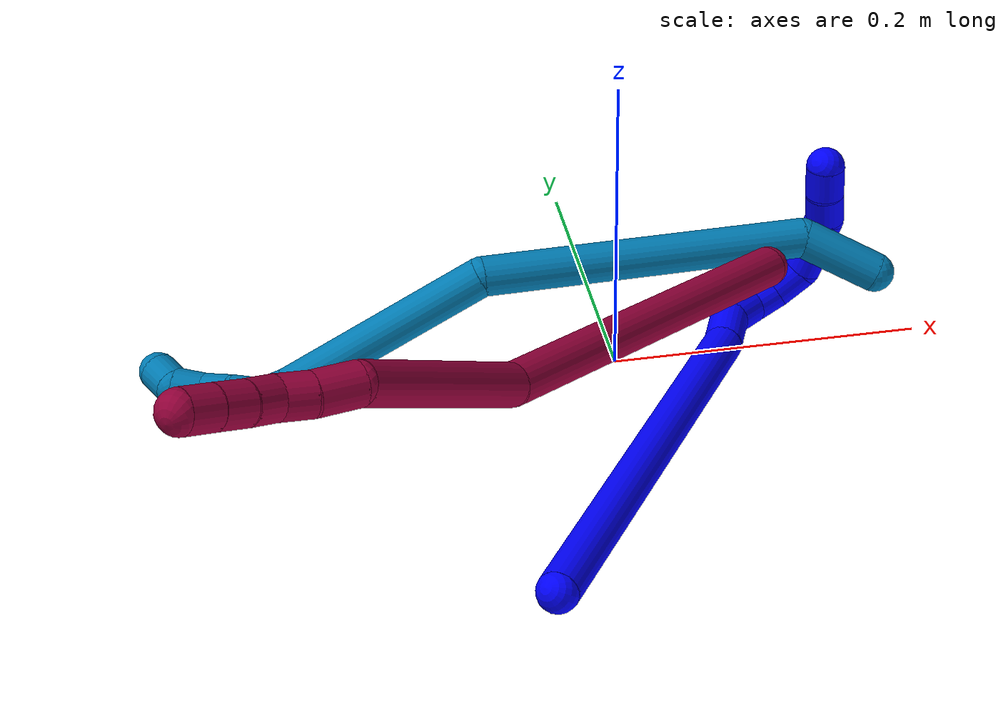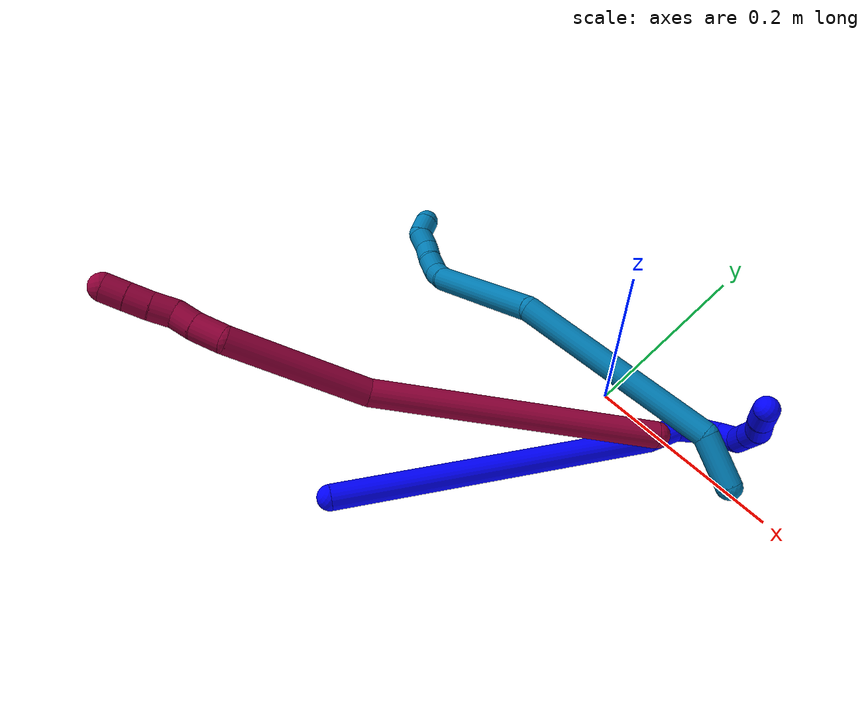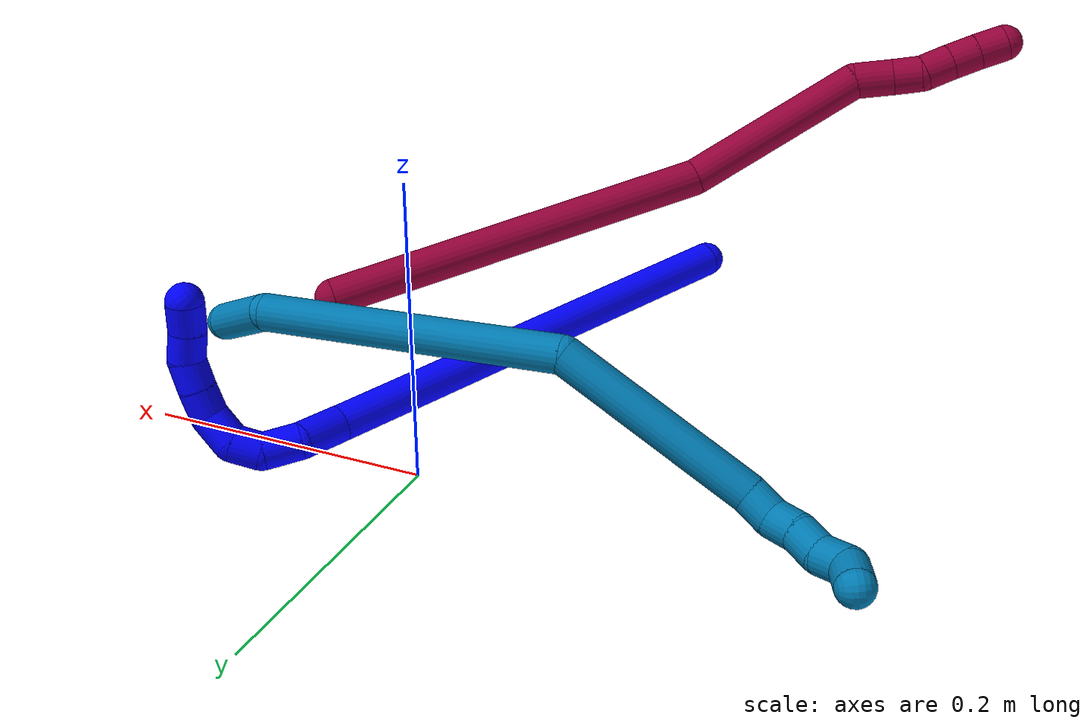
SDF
<sdf version="1.7">
 <world name="default">
  <model name="photoneo_s_sensor">
   <static>1</static>
   <pose>0 0 2 1.57079 1.57079 3.14159</pose>
   <link name="link">
    <inertial><mass>0.1</mass></inertial>
    <sensor name="sensor" type="depth">
     <update_rate>30</update_rate>
     <camera>
      <horizontal_fov>1.22</horizontal_fov>
      <image><width>1920</width><height>1200</height><format>B8G8R8</format></image>
      <clip><near>0.1</near><far>4</far></clip>
      <depth_camera><output>points</output></depth_camera>
     </camera>
     <plugin name="camera_plugin" filename="libgazebo_ros_depth_camera.so">
      <baseline>0.2</baseline>
      <alwaysOn>1</alwaysOn>
      <updateRate>0.0</updateRate>
      <cameraName>camera_ir</cameraName>
      <imageTopicName>/camera/color/image_raw</imageTopicName>
      <cameraInfoTopicName>/camera/color/camera_info</cameraInfoTopicName>
      <depthImageTopicName>/camera/depth/image_raw</depthImageTopicName>
      <depthImageCameraInfoTopicName>/camera/depth/camera_info</depthImageCameraInfoTopicName>
      <pointCloudTopicName>/camera/depth/points</pointCloudTopicName>
      <frameName>fr_optical</frameName>
      <pointCloudCutoff>0.1</pointCloudCutoff>
      <pointCloudCutoffMax>2.0</pointCloudCutoffMax>
      <distortionK1>0</distortionK1>
      <distortionK2>0</distortionK2>
      <distortionK3>0</distortionK3>
      <distortionT1>0</distortionT1>
      <distortionT2>0</distortionT2>
      <CxPrime>0</CxPrime>
      <Cx>0</Cx>
      <Cy>0</Cy>
      <focalLength>0</focalLength>
      <hackBaseline>0</hackBaseline>
     </plugin>
    </sensor>
   </link>
  </model>
  <model name="bin">
   <static>1</static>
   <link name="bottom">
    <collision name="collision-bottom">
     <pose>0 0 -0.01 0 -0 0</pose>
     <geometry><box><size>0.8 0.6 0.02</size></box></geometry>
     <surface>
      <friction><ode><mu>100</mu><mu2>100</mu2></ode></friction>
      <contact><collide_bitmask>65535</collide_bitmask></contact>
     </surface>
    </collision>
   </link>
   <link name="west_wall">
    <collision name="collision-west_wall">
     <pose>-0.41 0 0.1 0 -0 0</pose>
     <geometry><box><size>0.02 0.6 0.2</size></box></geometry>
     <surface>
      <friction><ode><mu>100</mu><mu2>100</mu2></ode></friction>
      <contact><collide_bitmask>65535</collide_bitmask></contact>
     </surface>
    </collision>
   </link>
   <link name="east_wall">
    <collision name="collision-east_wall">
     <pose>0.41 0 0.1 0 -0 0</pose>
     <geometry><box><size>0.02 0.6 0.2</size></box></geometry>
     <surface>
      <friction><ode><mu>100</mu><mu2>100</mu2></ode></friction>
      <contact><collide_bitmask>65535</collide_bitmask></contact>
     </surface>
    </collision>
   </link>
   <link name="south_wall">
    <collision name="collision-south_wall">
     <pose>0 -0.31 0.1 0 -0 0</pose>
     <geometry><box><size>0.8 0.02 0.2</size></box></geometry>
     <surface>
      <friction><ode><mu>100</mu><mu2>100</mu2></ode></friction>
      <contact><collide_bitmask>65535</collide_bitmask></contact>
     </surface>
    </collision>
   </link>
   <link name="north_wall">
    <collision name="collision-north_wall">
     <pose>0 0.31 0.1 0 -0 0</pose>
     <geometry><box><size>0.8 0.02 0.2</size></box></geometry>
     <surface>
      <friction><ode><mu>100</mu><mu2>100</mu2></ode></friction>
      <contact><collide_bitmask>65535</collide_bitmask></contact>
     </surface>
    </collision>
   </link>
  </model>
  <model name="1">
   <static>0</static>
   <link name="1">
    <collision name="collision-cylinder-e_1_1_4">
     <pose>0.070733 0.076164 -0.121175 -2.58045 0.459004 -1.36244</pose>
     <geometry><cylinder><radius>0.0125</radius><length>0.319297</length></cylinder></geometry>
     <surface>
      <friction><ode><mu>1.16</mu><mu2>1.16</mu2><slip1>0</slip1><slip2>0</slip2></ode></friction>
      <contact><ode><kp>1e+06</kp><kd>1</kd><max_vel>0</max_vel><min_depth>0.001</min_depth></ode></contact>
     </surface>
    </collision>
    <visual name="visual-cylinder-e_1_1_4">
     <pose>0.070733 0.076164 -0.121175 -2.58045 0.459004 -1.36244</pose>
     <geometry><cylinder><radius>0.0125</radius><length>0.319297</length></cylinder></geometry>
     <material><ambient>0 0 1 1</ambient></material>
    </visual>
    <collision name="collision-cylinder-e_2_4_5">
     <pose>0.148908 0.162032 -0.252272 -2.36735 0.492259 -1.1045</pose>
     <geometry><cylinder><radius>0.0125</radius><length>0.031494</length></cylinder></geometry>
     <surface>
      <friction><ode><mu>1.16</mu><mu2>1.16</mu2><slip1>0</slip1><slip2>0</slip2></ode></friction>
      <contact><ode><kp>1e+06</kp><kd>1</kd><max_vel>0</max_vel><min_depth>0.001</min_depth></ode></contact>
     </surface>
    </collision>
    <visual name="visual-cylinder-e_2_4_5">
     <pose>0.148908 0.162032 -0.252272 -2.36735 0.492259 -1.1045</pose>
     <geometry><cylinder><radius>0.0125</radius><length>0.031494</length></cylinder></geometry>
     <material><ambient>0 0 1 1</ambient></material>
    </visual>
    <collision name="collision-cylinder-e_3_5_6">
     <pose>0.162961 0.174394 -0.272682 -2.89323 0.548386 -2.30627</pose>
     <geometry><cylinder><radius>0.0125</radius><length>0.02536</length></cylinder></geometry>
     <surface>
      <friction><ode><mu>1.16</mu><mu2>1.16</mu2><slip1>0</slip1><slip2>0</slip2></ode></friction>
      <contact><ode><kp>1e+06</kp><kd>1</kd><max_vel>0</max_vel><min_depth>0.001</min_depth></ode></contact>
     </surface>
    </collision>
    <visual name="visual-cylinder-e_3_5_6">
     <pose>0.162961 0.174394 -0.272682 -2.89323 0.548386 -2.30627</pose>
     <geometry><cylinder><radius>0.0125</radius><length>0.02536</length></cylinder></geometry>
     <material><ambient>0 0 1 1</ambient></material>
    </visual>
    <collision name="collision-cylinder-e_4_6_7">
     <pose>0.1779 0.17552 -0.288527 2.86272 0.981267 2.62775</pose>
     <geometry><cylinder><radius>0.0125</radius><length>0.020042</length></cylinder></geometry>
     <surface>
      <friction><ode><mu>1.16</mu><mu2>1.16</mu2><slip1>0</slip1><slip2>0</slip2></ode></friction>
      <contact><ode><kp>1e+06</kp><kd>1</kd><max_vel>0</max_vel><min_depth>0.001</min_depth></ode></contact>
     </surface>
    </collision>
    <visual name="visual-cylinder-e_4_6_7">
     <pose>0.1779 0.17552 -0.288527 2.86272 0.981267 2.62775</pose>
     <geometry><cylinder><radius>0.0125</radius><length>0.020042</length></cylinder></geometry>
     <material><ambient>0 0 1 1</ambient></material>
    </visual>
    <collision name="collision-cylinder-e_5_7_8">
     <pose>0.196778 0.169395 -0.294046 1.60625 1.16 1.19274</pose>
     <geometry><cylinder><radius>0.0125</radius><length>0.023011</length></cylinder></geometry>
     <surface>
      <friction><ode><mu>1.16</mu><mu2>1.16</mu2><slip1>0</slip1><slip2>0</slip2></ode></friction>
      <contact><ode><kp>1e+06</kp><kd>1</kd><max_vel>0</max_vel><min_depth>0.001</min_depth></ode></contact>
     </surface>
    </collision>
    <visual name="visual-cylinder-e_5_7_8">
     <pose>0.196778 0.169395 -0.294046 1.60625 1.16 1.19274</pose>
     <geometry><cylinder><radius>0.0125</radius><length>0.023011</length></cylinder></geometry>
     <material><ambient>0 0 1 1</ambient></material>
    </visual>
    <collision name="collision-cylinder-e_6_8_9">
     <pose>0.216645 0.163697 -0.290394 0.282203 1.16791 0.187189</pose>
     <geometry><cylinder><radius>0.0125</radius><length>0.020259</length></cylinder></geometry>
     <surface>
      <friction><ode><mu>1.16</mu><mu2>1.16</mu2><slip1>0</slip1><slip2>0</slip2></ode></friction>
      <contact><ode><kp>1e+06</kp><kd>1</kd><max_vel>0</max_vel><min_depth>0.001</min_depth></ode></contact>
     </surface>
    </collision>
    <visual name="visual-cylinder-e_6_8_9">
     <pose>0.216645 0.163697 -0.290394 0.282203 1.16791 0.187189</pose>
     <geometry><cylinder><radius>0.0125</radius><length>0.020259</length></cylinder></geometry>
     <material><ambient>0 0 1 1</ambient></material>
    </visual>
    <collision name="collision-cylinder-e_7_9_10">
     <pose>0.234927 0.161015 -0.282424 0.362489 1.11047 0.226387</pose>
     <geometry><cylinder><radius>0.0125</radius><length>0.02001</length></cylinder></geometry>
     <surface>
      <friction><ode><mu>1.16</mu><mu2>1.16</mu2><slip1>0</slip1><slip2>0</slip2></ode></friction>
      <contact><ode><kp>1e+06</kp><kd>1</kd><max_vel>0</max_vel><min_depth>0.001</min_depth></ode></contact>
     </surface>
    </collision>
    <visual name="visual-cylinder-e_7_9_10">
     <pose>0.234927 0.161015 -0.282424 0.362489 1.11047 0.226387</pose>
     <geometry><cylinder><radius>0.0125</radius><length>0.02001</length></cylinder></geometry>
     <material><ambient>0 0 1 1</ambient></material>
    </visual>
    <collision name="collision-cylinder-e_8_10_11">
     <pose>0.250617 0.159558 -0.27075 -0.015859 0.729801 -0.006058</pose>
     <geometry><cylinder><radius>0.0125</radius><length>0.020177</length></cylinder></geometry>
     <surface>
      <friction><ode><mu>1.16</mu><mu2>1.16</mu2><slip1>0</slip1><slip2>0</slip2></ode></friction>
      <contact><ode><kp>1e+06</kp><kd>1</kd><max_vel>0</max_vel><min_depth>0.001</min_depth></ode></contact>
     </surface>
    </collision>
    <visual name="visual-cylinder-e_8_10_11">
     <pose>0.250617 0.159558 -0.27075 -0.015859 0.729801 -0.006058</pose>
     <geometry><cylinder><radius>0.0125</radius><length>0.020177</length></cylinder></geometry>
     <material><ambient>0 0 1 1</ambient></material>
    </visual>
    <collision name="collision-cylinder-e_9_11_2">
     <pose>0.264999 0.160468 -0.256576 -0.118261 0.851722 -0.053695</pose>
     <geometry><cylinder><radius>0.0125</radius><length>0.020351</length></cylinder></geometry>
     <surface>
      <friction><ode><mu>1.16</mu><mu2>1.16</mu2><slip1>0</slip1><slip2>0</slip2></ode></friction>
      <contact><ode><kp>1e+06</kp><kd>1</kd><max_vel>0</max_vel><min_depth>0.001</min_depth></ode></contact>
     </surface>
    </collision>
    <visual name="visual-cylinder-e_9_11_2">
     <pose>0.264999 0.160468 -0.256576 -0.118261 0.851722 -0.053695</pose>
     <geometry><cylinder><radius>0.0125</radius><length>0.020351</length></cylinder></geometry>
     <material><ambient>0 0 1 1</ambient></material>
    </visual>
    <collision name="collision-sphere-2">
     <pose>0.272655 0.161259 -0.249921 0 -0 0</pose>
     <geometry><sphere><radius>0.0125</radius></sphere></geometry>
     <surface>
      <friction><ode><mu>1.16</mu><mu2>1.16</mu2><slip1>0</slip1><slip2>0</slip2></ode></friction>
      <contact><ode><kp>1e+06</kp><kd>1</kd><max_vel>0</max_vel><min_depth>0.001</min_depth></ode></contact>
     </surface>
    </collision>
    <visual name="visual-sphere-2">
     <pose>0.272655 0.161259 -0.249921 0 -0 0</pose>
     <geometry><sphere><radius>0.0125</radius></sphere></geometry>
     <material><ambient>0 0 1 1</ambient></material>
    </visual>
    <collision name="collision-sphere-11">
     <pose>0.257343 0.159678 -0.263232 0 -0 0</pose>
     <geometry><sphere><radius>0.0125</radius></sphere></geometry>
     <surface>
      <friction><ode><mu>1.16</mu><mu2>1.16</mu2><slip1>0</slip1><slip2>0</slip2></ode></friction>
      <contact><ode><kp>1e+06</kp><kd>1</kd><max_vel>0</max_vel><min_depth>0.001</min_depth></ode></contact>
     </surface>
    </collision>
    <visual name="visual-sphere-11">
     <pose>0.257343 0.159678 -0.263232 0 -0 0</pose>
     <geometry><sphere><radius>0.0125</radius></sphere></geometry>
     <material><ambient>0 0 1 1</ambient></material>
    </visual>
    <collision name="collision-sphere-10">
     <pose>0.243891 0.159439 -0.278268 0 -0 0</pose>
     <geometry><sphere><radius>0.0125</radius></sphere></geometry>
     <surface>
      <friction><ode><mu>1.16</mu><mu2>1.16</mu2><slip1>0</slip1><slip2>0</slip2></ode></friction>
      <contact><ode><kp>1e+06</kp><kd>1</kd><max_vel>0</max_vel><min_depth>0.001</min_depth></ode></contact>
     </surface>
    </collision>
    <visual name="visual-sphere-10">
     <pose>0.243891 0.159439 -0.278268 0 -0 0</pose>
     <geometry><sphere><radius>0.0125</radius></sphere></geometry>
     <material><ambient>0 0 1 1</ambient></material>
    </visual>
    <collision name="collision-sphere-9">
     <pose>0.225963 0.162591 -0.28658 0 -0 0</pose>
     <geometry><sphere><radius>0.0125</radius></sphere></geometry>
     <surface>
      <friction><ode><mu>1.16</mu><mu2>1.16</mu2><slip1>0</slip1><slip2>0</slip2></ode></friction>
      <contact><ode><kp>1e+06</kp><kd>1</kd><max_vel>0</max_vel><min_depth>0.001</min_depth></ode></contact>
     </surface>
    </collision>
    <visual name="visual-sphere-9">
     <pose>0.225963 0.162591 -0.28658 0 -0 0</pose>
     <geometry><sphere><radius>0.0125</radius></sphere></geometry>
     <material><ambient>0 0 1 1</ambient></material>
    </visual>
    <collision name="collision-sphere-4">
     <pose>0.141466 0.152329 -0.24235 0 -0 0</pose>
     <geometry><sphere><radius>0.0125</radius></sphere></geometry>
     <surface>
      <friction><ode><mu>1.16</mu><mu2>1.16</mu2><slip1>0</slip1><slip2>0</slip2></ode></friction>
      <contact><ode><kp>1e+06</kp><kd>1</kd><max_vel>0</max_vel><min_depth>0.001</min_depth></ode></contact>
     </surface>
    </collision>
    <visual name="visual-sphere-4">
     <pose>0.141466 0.152329 -0.24235 0 -0 0</pose>
     <geometry><sphere><radius>0.0125</radius></sphere></geometry>
     <material><ambient>0 0 1 1</ambient></material>
    </visual>
    <collision name="collision-sphere-1">
     <geometry><sphere><radius>0.0125</radius></sphere></geometry>
     <surface>
      <friction><ode><mu>1.16</mu><mu2>1.16</mu2><slip1>0</slip1><slip2>0</slip2></ode></friction>
      <contact><ode><kp>1e+06</kp><kd>1</kd><max_vel>0</max_vel><min_depth>0.001</min_depth></ode></contact>
     </surface>
    </collision>
    <visual name="visual-sphere-1">
     <geometry><sphere><radius>0.0125</radius></sphere></geometry>
     <material><ambient>0 0 1 1</ambient></material>
    </visual>
    <collision name="collision-sphere-8">
     <pose>0.207326 0.164803 -0.294208 0 -0 0</pose>
     <geometry><sphere><radius>0.0125</radius></sphere></geometry>
     <surface>
      <friction><ode><mu>1.16</mu><mu2>1.16</mu2><slip1>0</slip1><slip2>0</slip2></ode></friction>
      <contact><ode><kp>1e+06</kp><kd>1</kd><max_vel>0</max_vel><min_depth>0.001</min_depth></ode></contact>
     </surface>
    </collision>
    <visual name="visual-sphere-8">
     <pose>0.207326 0.164803 -0.294208 0 -0 0</pose>
     <geometry><sphere><radius>0.0125</radius></sphere></geometry>
     <material><ambient>0 0 1 1</ambient></material>
    </visual>
    <collision name="collision-sphere-5">
     <pose>0.156351 0.171734 -0.262193 0 -0 0</pose>
     <geometry><sphere><radius>0.0125</radius></sphere></geometry>
     <surface>
      <friction><ode><mu>1.16</mu><mu2>1.16</mu2><slip1>0</slip1><slip2>0</slip2></ode></friction>
      <contact><ode><kp>1e+06</kp><kd>1</kd><max_vel>0</max_vel><min_depth>0.001</min_depth></ode></contact>
     </surface>
    </collision>
    <visual name="visual-sphere-5">
     <pose>0.156351 0.171734 -0.262193 0 -0 0</pose>
     <geometry><sphere><radius>0.0125</radius></sphere></geometry>
     <material><ambient>0 0 1 1</ambient></material>
    </visual>
    <collision name="collision-sphere-6">
     <pose>0.169571 0.177054 -0.283171 0 -0 0</pose>
     <geometry><sphere><radius>0.0125</radius></sphere></geometry>
     <surface>
      <friction><ode><mu>1.16</mu><mu2>1.16</mu2><slip1>0</slip1><slip2>0</slip2></ode></friction>
      <contact><ode><kp>1e+06</kp><kd>1</kd><max_vel>0</max_vel><min_depth>0.001</min_depth></ode></contact>
     </surface>
    </collision>
    <visual name="visual-sphere-6">
     <pose>0.169571 0.177054 -0.283171 0 -0 0</pose>
     <geometry><sphere><radius>0.0125</radius></sphere></geometry>
     <material><ambient>0 0 1 1</ambient></material>
    </visual>
    <collision name="collision-sphere-7">
     <pose>0.18623 0.173987 -0.293883 0 -0 0</pose>
     <geometry><sphere><radius>0.0125</radius></sphere></geometry>
     <surface>
      <friction><ode><mu>1.16</mu><mu2>1.16</mu2><slip1>0</slip1><slip2>0</slip2></ode></friction>
      <contact><ode><kp>1e+06</kp><kd>1</kd><max_vel>0</max_vel><min_depth>0.001</min_depth></ode></contact>
     </surface>
    </collision>
    <visual name="visual-sphere-7">
     <pose>0.18623 0.173987 -0.293883 0 -0 0</pose>
     <geometry><sphere><radius>0.0125</radius></sphere></geometry>
     <material><ambient>0 0 1 1</ambient></material>
    </visual>
    <inertial>
     <pose>0.11808 0.108567 -0.176637 0 -0 0</pose>
     <mass>0.5</mass>
     <inertia>
      <ixx>-0.001864</ixx>
      <ixy>0</ixy>
      <ixz>0</ixz>
      <iyy>-0.002219</iyy>
      <iyz>0</iyz>
      <izz>-0.002539</izz>
     </inertia>
    </inertial>
   </link>
   <pose>-0.092999 -0.288503 0.055786 0.087195 -0.863797 0.461577</pose>
  </model>
  <model name="8">
   <static>0</static>
   <link name="8">
    <collision name="collision-cylinder-e_1_1_4">
     <pose>-0.024144 -0.029455 0.12606 0.229543 -0.184385 -0.021315</pose>
     <geometry><cylinder><radius>0.0125</radius><length>0.263376</length></cylinder></geometry>
     <surface>
      <friction><ode><mu>1.16</mu><mu2>1.16</mu2><slip1>0</slip1><slip2>0</slip2></ode></friction>
      <contact><ode><kp>1e+06</kp><kd>1</kd><max_vel>0</max_vel><min_depth>0.001</min_depth></ode></contact>
     </surface>
    </collision>
    <visual name="visual-cylinder-e_1_1_4">
     <pose>-0.024144 -0.029455 0.12606 0.229543 -0.184385 -0.021315</pose>
     <geometry><cylinder><radius>0.0125</radius><length>0.263376</length></cylinder></geometry>
     <material><ambient>0.584314 0 0.227451 1</ambient></material>
    </visual>
    <collision name="collision-cylinder-e_2_4_5">
     <pose>-0.077513 -0.075336 0.307431 0.288673 -0.468846 -0.069394</pose>
     <geometry><cylinder><radius>0.0125</radius><length>0.129355</length></cylinder></geometry>
     <surface>
      <friction><ode><mu>1.16</mu><mu2>1.16</mu2><slip1>0</slip1><slip2>0</slip2></ode></friction>
      <contact><ode><kp>1e+06</kp><kd>1</kd><max_vel>0</max_vel><min_depth>0.001</min_depth></ode></contact>
     </surface>
    </collision>
    <visual name="visual-cylinder-e_2_4_5">
     <pose>-0.077513 -0.075336 0.307431 0.288673 -0.468846 -0.069394</pose>
     <geometry><cylinder><radius>0.0125</radius><length>0.129355</length></cylinder></geometry>
     <material><ambient>0.584314 0 0.227451 1</ambient></material>
    </visual>
    <collision name="collision-cylinder-e_3_5_6">
     <pose>-0.108279 -0.099359 0.373804 0.60179 -0.114358 -0.035522</pose>
     <geometry><cylinder><radius>0.0125</radius><length>0.027016</length></cylinder></geometry>
     <surface>
      <friction><ode><mu>1.16</mu><mu2>1.16</mu2><slip1>0</slip1><slip2>0</slip2></ode></friction>
      <contact><ode><kp>1e+06</kp><kd>1</kd><max_vel>0</max_vel><min_depth>0.001</min_depth></ode></contact>
     </surface>
    </collision>
    <visual name="visual-cylinder-e_3_5_6">
     <pose>-0.108279 -0.099359 0.373804 0.60179 -0.114358 -0.035522</pose>
     <geometry><cylinder><radius>0.0125</radius><length>0.027016</length></cylinder></geometry>
     <material><ambient>0.584314 0 0.227451 1</ambient></material>
    </visual>
    <collision name="collision-cylinder-e_4_6_7">
     <pose>-0.111607 -0.113453 0.392258 0.721051 -0.179547 -0.067846</pose>
     <geometry><cylinder><radius>0.0125</radius><length>0.020003</length></cylinder></geometry>
     <surface>
      <friction><ode><mu>1.16</mu><mu2>1.16</mu2><slip1>0</slip1><slip2>0</slip2></ode></friction>
      <contact><ode><kp>1e+06</kp><kd>1</kd><max_vel>0</max_vel><min_depth>0.001</min_depth></ode></contact>
     </surface>
    </collision>
    <visual name="visual-cylinder-e_4_6_7">
     <pose>-0.111607 -0.113453 0.392258 0.721051 -0.179547 -0.067846</pose>
     <geometry><cylinder><radius>0.0125</radius><length>0.020003</length></cylinder></geometry>
     <material><ambient>0.584314 0 0.227451 1</ambient></material>
    </visual>
    <collision name="collision-cylinder-e_5_7_8">
     <pose>-0.116546 -0.123073 0.408731 0.331291 -0.317183 -0.053462</pose>
     <geometry><cylinder><radius>0.0125</radius><length>0.020218</length></cylinder></geometry>
     <surface>
      <friction><ode><mu>1.16</mu><mu2>1.16</mu2><slip1>0</slip1><slip2>0</slip2></ode></friction>
      <contact><ode><kp>1e+06</kp><kd>1</kd><max_vel>0</max_vel><min_depth>0.001</min_depth></ode></contact>
     </surface>
    </collision>
    <visual name="visual-cylinder-e_5_7_8">
     <pose>-0.116546 -0.123073 0.408731 0.331291 -0.317183 -0.053462</pose>
     <geometry><cylinder><radius>0.0125</radius><length>0.020218</length></cylinder></geometry>
     <material><ambient>0.584314 0 0.227451 1</ambient></material>
    </visual>
    <collision name="collision-cylinder-e_6_8_9">
     <pose>-0.122847 -0.130033 0.426499 0.415837 -0.320229 -0.068115</pose>
     <geometry><cylinder><radius>0.0125</radius><length>0.020005</length></cylinder></geometry>
     <surface>
      <friction><ode><mu>1.16</mu><mu2>1.16</mu2><slip1>0</slip1><slip2>0</slip2></ode></friction>
      <contact><ode><kp>1e+06</kp><kd>1</kd><max_vel>0</max_vel><min_depth>0.001</min_depth></ode></contact>
     </surface>
    </collision>
    <visual name="visual-cylinder-e_6_8_9">
     <pose>-0.122847 -0.130033 0.426499 0.415837 -0.320229 -0.068115</pose>
     <geometry><cylinder><radius>0.0125</radius><length>0.020005</length></cylinder></geometry>
     <material><ambient>0.584314 0 0.227451 1</ambient></material>
    </visual>
    <collision name="collision-cylinder-e_7_9_2">
     <pose>-0.1289 -0.137983 0.443839 0.443864 -0.294186 -0.066841</pose>
     <geometry><cylinder><radius>0.0125</radius><length>0.020027</length></cylinder></geometry>
     <surface>
      <friction><ode><mu>1.16</mu><mu2>1.16</mu2><slip1>0</slip1><slip2>0</slip2></ode></friction>
      <contact><ode><kp>1e+06</kp><kd>1</kd><max_vel>0</max_vel><min_depth>0.001</min_depth></ode></contact>
     </surface>
    </collision>
    <visual name="visual-cylinder-e_7_9_2">
     <pose>-0.1289 -0.137983 0.443839 0.443864 -0.294186 -0.066841</pose>
     <geometry><cylinder><radius>0.0125</radius><length>0.020027</length></cylinder></geometry>
     <material><ambient>0.584314 0 0.227451 1</ambient></material>
    </visual>
    <collision name="collision-sphere-2">
     <pose>-0.131803 -0.142099 0.452493 0 -0 0</pose>
     <geometry><sphere><radius>0.0125</radius></sphere></geometry>
     <surface>
      <friction><ode><mu>1.16</mu><mu2>1.16</mu2><slip1>0</slip1><slip2>0</slip2></ode></friction>
      <contact><ode><kp>1e+06</kp><kd>1</kd><max_vel>0</max_vel><min_depth>0.001</min_depth></ode></contact>
     </surface>
    </collision>
    <visual name="visual-sphere-2">
     <pose>-0.131803 -0.142099 0.452493 0 -0 0</pose>
     <geometry><sphere><radius>0.0125</radius></sphere></geometry>
     <material><ambient>0.584314 0 0.227451 1</ambient></material>
    </visual>
    <collision name="collision-sphere-9">
     <pose>-0.125996 -0.133868 0.435184 0 -0 0</pose>
     <geometry><sphere><radius>0.0125</radius></sphere></geometry>
     <surface>
      <friction><ode><mu>1.16</mu><mu2>1.16</mu2><slip1>0</slip1><slip2>0</slip2></ode></friction>
      <contact><ode><kp>1e+06</kp><kd>1</kd><max_vel>0</max_vel><min_depth>0.001</min_depth></ode></contact>
     </surface>
    </collision>
    <visual name="visual-sphere-9">
     <pose>-0.125996 -0.133868 0.435184 0 -0 0</pose>
     <geometry><sphere><radius>0.0125</radius></sphere></geometry>
     <material><ambient>0.584314 0 0.227451 1</ambient></material>
    </visual>
    <collision name="collision-sphere-4">
     <pose>-0.048288 -0.058911 0.25212 0 -0 0</pose>
     <geometry><sphere><radius>0.0125</radius></sphere></geometry>
     <surface>
      <friction><ode><mu>1.16</mu><mu2>1.16</mu2><slip1>0</slip1><slip2>0</slip2></ode></friction>
      <contact><ode><kp>1e+06</kp><kd>1</kd><max_vel>0</max_vel><min_depth>0.001</min_depth></ode></contact>
     </surface>
    </collision>
    <visual name="visual-sphere-4">
     <pose>-0.048288 -0.058911 0.25212 0 -0 0</pose>
     <geometry><sphere><radius>0.0125</radius></sphere></geometry>
     <material><ambient>0.584314 0 0.227451 1</ambient></material>
    </visual>
    <collision name="collision-sphere-1">
     <geometry><sphere><radius>0.0125</radius></sphere></geometry>
     <surface>
      <friction><ode><mu>1.16</mu><mu2>1.16</mu2><slip1>0</slip1><slip2>0</slip2></ode></friction>
      <contact><ode><kp>1e+06</kp><kd>1</kd><max_vel>0</max_vel><min_depth>0.001</min_depth></ode></contact>
     </surface>
    </collision>
    <visual name="visual-sphere-1">
     <geometry><sphere><radius>0.0125</radius></sphere></geometry>
     <material><ambient>0.584314 0 0.227451 1</ambient></material>
    </visual>
    <collision name="collision-sphere-8">
     <pose>-0.119699 -0.126197 0.417814 0 -0 0</pose>
     <geometry><sphere><radius>0.0125</radius></sphere></geometry>
     <surface>
      <friction><ode><mu>1.16</mu><mu2>1.16</mu2><slip1>0</slip1><slip2>0</slip2></ode></friction>
      <contact><ode><kp>1e+06</kp><kd>1</kd><max_vel>0</max_vel><min_depth>0.001</min_depth></ode></contact>
     </surface>
    </collision>
    <visual name="visual-sphere-8">
     <pose>-0.119699 -0.126197 0.417814 0 -0 0</pose>
     <geometry><sphere><radius>0.0125</radius></sphere></geometry>
     <material><ambient>0.584314 0 0.227451 1</ambient></material>
    </visual>
    <collision name="collision-sphere-5">
     <pose>-0.106738 -0.091762 0.362742 0 -0 0</pose>
     <geometry><sphere><radius>0.0125</radius></sphere></geometry>
     <surface>
      <friction><ode><mu>1.16</mu><mu2>1.16</mu2><slip1>0</slip1><slip2>0</slip2></ode></friction>
      <contact><ode><kp>1e+06</kp><kd>1</kd><max_vel>0</max_vel><min_depth>0.001</min_depth></ode></contact>
     </surface>
    </collision>
    <visual name="visual-sphere-5">
     <pose>-0.106738 -0.091762 0.362742 0 -0 0</pose>
     <geometry><sphere><radius>0.0125</radius></sphere></geometry>
     <material><ambient>0.584314 0 0.227451 1</ambient></material>
    </visual>
    <collision name="collision-sphere-6">
     <pose>-0.109821 -0.106956 0.384866 0 -0 0</pose>
     <geometry><sphere><radius>0.0125</radius></sphere></geometry>
     <surface>
      <friction><ode><mu>1.16</mu><mu2>1.16</mu2><slip1>0</slip1><slip2>0</slip2></ode></friction>
      <contact><ode><kp>1e+06</kp><kd>1</kd><max_vel>0</max_vel><min_depth>0.001</min_depth></ode></contact>
     </surface>
    </collision>
    <visual name="visual-sphere-6">
     <pose>-0.109821 -0.106956 0.384866 0 -0 0</pose>
     <geometry><sphere><radius>0.0125</radius></sphere></geometry>
     <material><ambient>0.584314 0 0.227451 1</ambient></material>
    </visual>
    <collision name="collision-sphere-7">
     <pose>-0.113393 -0.119949 0.399649 0 -0 0</pose>
     <geometry><sphere><radius>0.0125</radius></sphere></geometry>
     <surface>
      <friction><ode><mu>1.16</mu><mu2>1.16</mu2><slip1>0</slip1><slip2>0</slip2></ode></friction>
      <contact><ode><kp>1e+06</kp><kd>1</kd><max_vel>0</max_vel><min_depth>0.001</min_depth></ode></contact>
     </surface>
    </collision>
    <visual name="visual-sphere-7">
     <pose>-0.113393 -0.119949 0.399649 0 -0 0</pose>
     <geometry><sphere><radius>0.0125</radius></sphere></geometry>
     <material><ambient>0.584314 0 0.227451 1</ambient></material>
    </visual>
    <inertial>
     <pose>-0.057878 -0.060619 0.233197 0 -0 0</pose>
     <mass>0.5</mass>
     <inertia>
      <ixx>0.001625</ixx>
      <ixy>0</ixy>
      <ixz>0</ixz>
      <iyy>0.001625</iyy>
      <iyz>0</iyz>
      <izz>0.000796</izz>
     </inertia>
    </inertial>
   </link>
   <pose>0.085979 -0.04644 0.091427 0.855858 1.51018 -1.31179</pose>
  </model>
  <model name="9">
   <static>0</static>
   <link name="9">
    <collision name="collision-cylinder-e_1_1_4">
     <pose>-0.013623 0.012699 0.017797 -0.61976 -0.55724 0.182681</pose>
     <geometry><cylinder><radius>0.0125</radius><length>0.05152</length></cylinder></geometry>
     <surface>
      <friction><ode><mu>1.16</mu><mu2>1.16</mu2><slip1>0</slip1><slip2>0</slip2></ode></friction>
      <contact><ode><kp>1e+06</kp><kd>1</kd><max_vel>0</max_vel><min_depth>0.001</min_depth></ode></contact>
     </surface>
    </collision>
    <visual name="visual-cylinder-e_1_1_4">
     <pose>-0.013623 0.012699 0.017797 -0.61976 -0.55724 0.182681</pose>
     <geometry><cylinder><radius>0.0125</radius><length>0.05152</length></cylinder></geometry>
     <material><ambient>0 0.490196 0.709804 1</ambient></material>
    </visual>
    <collision name="collision-cylinder-e_2_4_5">
     <pose>-0.066664 0.027043 0.13206 -0.017061 -0.387866 0.003351</pose>
     <geometry><cylinder><radius>0.0125</radius><length>0.208446</length></cylinder></geometry>
     <surface>
      <friction><ode><mu>1.16</mu><mu2>1.16</mu2><slip1>0</slip1><slip2>0</slip2></ode></friction>
      <contact><ode><kp>1e+06</kp><kd>1</kd><max_vel>0</max_vel><min_depth>0.001</min_depth></ode></contact>
     </surface>
    </collision>
    <visual name="visual-cylinder-e_2_4_5">
     <pose>-0.066664 0.027043 0.13206 -0.017061 -0.387866 0.003351</pose>
     <geometry><cylinder><radius>0.0125</radius><length>0.208446</length></cylinder></geometry>
     <material><ambient>0 0.490196 0.709804 1</ambient></material>
    </visual>
    <collision name="collision-cylinder-e_3_5_6">
     <pose>-0.141785 -0.003171 0.279518 0.558472 -0.535845 -0.157102</pose>
     <geometry><cylinder><radius>0.0125</radius><length>0.139854</length></cylinder></geometry>
     <surface>
      <friction><ode><mu>1.16</mu><mu2>1.16</mu2><slip1>0</slip1><slip2>0</slip2></ode></friction>
      <contact><ode><kp>1e+06</kp><kd>1</kd><max_vel>0</max_vel><min_depth>0.001</min_depth></ode></contact>
     </surface>
    </collision>
    <visual name="visual-cylinder-e_3_5_6">
     <pose>-0.141785 -0.003171 0.279518 0.558472 -0.535845 -0.157102</pose>
     <geometry><cylinder><radius>0.0125</radius><length>0.139854</length></cylinder></geometry>
     <material><ambient>0 0.490196 0.709804 1</ambient></material>
    </visual>
    <collision name="collision-cylinder-e_4_6_7">
     <pose>-0.184654 -0.038881 0.336469 0.573535 -0.790365 -0.244788</pose>
     <geometry><cylinder><radius>0.0125</radius><length>0.020171</length></cylinder></geometry>
     <surface>
      <friction><ode><mu>1.16</mu><mu2>1.16</mu2><slip1>0</slip1><slip2>0</slip2></ode></friction>
      <contact><ode><kp>1e+06</kp><kd>1</kd><max_vel>0</max_vel><min_depth>0.001</min_depth></ode></contact>
     </surface>
    </collision>
    <visual name="visual-cylinder-e_4_6_7">
     <pose>-0.184654 -0.038881 0.336469 0.573535 -0.790365 -0.244788</pose>
     <geometry><cylinder><radius>0.0125</radius><length>0.020171</length></cylinder></geometry>
     <material><ambient>0 0.490196 0.709804 1</ambient></material>
    </visual>
    <collision name="collision-cylinder-e_5_7_8">
     <pose>-0.199408 -0.041766 0.348878 -0.148661 -0.860864 0.068356</pose>
     <geometry><cylinder><radius>0.0125</radius><length>0.020008</length></cylinder></geometry>
     <surface>
      <friction><ode><mu>1.16</mu><mu2>1.16</mu2><slip1>0</slip1><slip2>0</slip2></ode></friction>
      <contact><ode><kp>1e+06</kp><kd>1</kd><max_vel>0</max_vel><min_depth>0.001</min_depth></ode></contact>
     </surface>
    </collision>
    <visual name="visual-cylinder-e_5_7_8">
     <pose>-0.199408 -0.041766 0.348878 -0.148661 -0.860864 0.068356</pose>
     <geometry><cylinder><radius>0.0125</radius><length>0.020008</length></cylinder></geometry>
     <material><ambient>0 0.490196 0.709804 1</ambient></material>
    </visual>
    <collision name="collision-cylinder-e_6_8_9">
     <pose>-0.215766 -0.041313 0.360104 0.107054 -1.0696 -0.063456</pose>
     <geometry><cylinder><radius>0.0125</radius><length>0.02</length></cylinder></geometry>
     <surface>
      <friction><ode><mu>1.16</mu><mu2>1.16</mu2><slip1>0</slip1><slip2>0</slip2></ode></friction>
      <contact><ode><kp>1e+06</kp><kd>1</kd><max_vel>0</max_vel><min_depth>0.001</min_depth></ode></contact>
     </surface>
    </collision>
    <visual name="visual-cylinder-e_6_8_9">
     <pose>-0.215766 -0.041313 0.360104 0.107054 -1.0696 -0.063456</pose>
     <geometry><cylinder><radius>0.0125</radius><length>0.02</length></cylinder></geometry>
     <material><ambient>0 0.490196 0.709804 1</ambient></material>
    </visual>
    <collision name="collision-cylinder-e_7_9_10">
     <pose>-0.231657 -0.0399 0.371633 -0.278016 -0.792463 0.116932</pose>
     <geometry><cylinder><radius>0.0125</radius><length>0.02</length></cylinder></geometry>
     <surface>
      <friction><ode><mu>1.16</mu><mu2>1.16</mu2><slip1>0</slip1><slip2>0</slip2></ode></friction>
      <contact><ode><kp>1e+06</kp><kd>1</kd><max_vel>0</max_vel><min_depth>0.001</min_depth></ode></contact>
     </surface>
    </collision>
    <visual name="visual-cylinder-e_7_9_10">
     <pose>-0.231657 -0.0399 0.371633 -0.278016 -0.792463 0.116932</pose>
     <geometry><cylinder><radius>0.0125</radius><length>0.02</length></cylinder></geometry>
     <material><ambient>0 0.490196 0.709804 1</ambient></material>
    </visual>
    <collision name="collision-cylinder-e_8_10_2">
     <pose>-0.248446 -0.03542 0.378251 -1.62289 -1.31227 1.36297</pose>
     <geometry><cylinder><radius>0.0125</radius><length>0.020002</length></cylinder></geometry>
     <surface>
      <friction><ode><mu>1.16</mu><mu2>1.16</mu2><slip1>0</slip1><slip2>0</slip2></ode></friction>
      <contact><ode><kp>1e+06</kp><kd>1</kd><max_vel>0</max_vel><min_depth>0.001</min_depth></ode></contact>
     </surface>
    </collision>
    <visual name="visual-cylinder-e_8_10_2">
     <pose>-0.248446 -0.03542 0.378251 -1.62289 -1.31227 1.36297</pose>
     <geometry><cylinder><radius>0.0125</radius><length>0.020002</length></cylinder></geometry>
     <material><ambient>0 0.490196 0.709804 1</ambient></material>
    </visual>
    <collision name="collision-sphere-2">
     <pose>-0.258115 -0.032866 0.378118 0 -0 0</pose>
     <geometry><sphere><radius>0.0125</radius></sphere></geometry>
     <surface>
      <friction><ode><mu>1.16</mu><mu2>1.16</mu2><slip1>0</slip1><slip2>0</slip2></ode></friction>
      <contact><ode><kp>1e+06</kp><kd>1</kd><max_vel>0</max_vel><min_depth>0.001</min_depth></ode></contact>
     </surface>
    </collision>
    <visual name="visual-sphere-2">
     <pose>-0.258115 -0.032866 0.378118 0 -0 0</pose>
     <geometry><sphere><radius>0.0125</radius></sphere></geometry>
     <material><ambient>0 0.490196 0.709804 1</ambient></material>
    </visual>
    <collision name="collision-sphere-10">
     <pose>-0.238778 -0.037973 0.378384 0 -0 0</pose>
     <geometry><sphere><radius>0.0125</radius></sphere></geometry>
     <surface>
      <friction><ode><mu>1.16</mu><mu2>1.16</mu2><slip1>0</slip1><slip2>0</slip2></ode></friction>
      <contact><ode><kp>1e+06</kp><kd>1</kd><max_vel>0</max_vel><min_depth>0.001</min_depth></ode></contact>
     </surface>
    </collision>
    <visual name="visual-sphere-10">
     <pose>-0.238778 -0.037973 0.378384 0 -0 0</pose>
     <geometry><sphere><radius>0.0125</radius></sphere></geometry>
     <material><ambient>0 0.490196 0.709804 1</ambient></material>
    </visual>
    <collision name="collision-sphere-9">
     <pose>-0.224536 -0.041827 0.364881 0 -0 0</pose>
     <geometry><sphere><radius>0.0125</radius></sphere></geometry>
     <surface>
      <friction><ode><mu>1.16</mu><mu2>1.16</mu2><slip1>0</slip1><slip2>0</slip2></ode></friction>
      <contact><ode><kp>1e+06</kp><kd>1</kd><max_vel>0</max_vel><min_depth>0.001</min_depth></ode></contact>
     </surface>
    </collision>
    <visual name="visual-sphere-9">
     <pose>-0.224536 -0.041827 0.364881 0 -0 0</pose>
     <geometry><sphere><radius>0.0125</radius></sphere></geometry>
     <material><ambient>0 0.490196 0.709804 1</ambient></material>
    </visual>
    <collision name="collision-sphere-4">
     <pose>-0.027246 0.025398 0.035593 0 -0 0</pose>
     <geometry><sphere><radius>0.0125</radius></sphere></geometry>
     <surface>
      <friction><ode><mu>1.16</mu><mu2>1.16</mu2><slip1>0</slip1><slip2>0</slip2></ode></friction>
      <contact><ode><kp>1e+06</kp><kd>1</kd><max_vel>0</max_vel><min_depth>0.001</min_depth></ode></contact>
     </surface>
    </collision>
    <visual name="visual-sphere-4">
     <pose>-0.027246 0.025398 0.035593 0 -0 0</pose>
     <geometry><sphere><radius>0.0125</radius></sphere></geometry>
     <material><ambient>0 0.490196 0.709804 1</ambient></material>
    </visual>
    <collision name="collision-sphere-1">
     <geometry><sphere><radius>0.0125</radius></sphere></geometry>
     <surface>
      <friction><ode><mu>1.16</mu><mu2>1.16</mu2><slip1>0</slip1><slip2>0</slip2></ode></friction>
      <contact><ode><kp>1e+06</kp><kd>1</kd><max_vel>0</max_vel><min_depth>0.001</min_depth></ode></contact>
     </surface>
    </collision>
    <visual name="visual-sphere-1">
     <geometry><sphere><radius>0.0125</radius></sphere></geometry>
     <material><ambient>0 0.490196 0.709804 1</ambient></material>
    </visual>
    <collision name="collision-sphere-8">
     <pose>-0.206995 -0.0408 0.355327 0 -0 0</pose>
     <geometry><sphere><radius>0.0125</radius></sphere></geometry>
     <surface>
      <friction><ode><mu>1.16</mu><mu2>1.16</mu2><slip1>0</slip1><slip2>0</slip2></ode></friction>
      <contact><ode><kp>1e+06</kp><kd>1</kd><max_vel>0</max_vel><min_depth>0.001</min_depth></ode></contact>
     </surface>
    </collision>
    <visual name="visual-sphere-8">
     <pose>-0.206995 -0.0408 0.355327 0 -0 0</pose>
     <geometry><sphere><radius>0.0125</radius></sphere></geometry>
     <material><ambient>0 0.490196 0.709804 1</ambient></material>
    </visual>
    <collision name="collision-sphere-5">
     <pose>-0.106083 0.028689 0.228527 0 -0 0</pose>
     <geometry><sphere><radius>0.0125</radius></sphere></geometry>
     <surface>
      <friction><ode><mu>1.16</mu><mu2>1.16</mu2><slip1>0</slip1><slip2>0</slip2></ode></friction>
      <contact><ode><kp>1e+06</kp><kd>1</kd><max_vel>0</max_vel><min_depth>0.001</min_depth></ode></contact>
     </surface>
    </collision>
    <visual name="visual-sphere-5">
     <pose>-0.106083 0.028689 0.228527 0 -0 0</pose>
     <geometry><sphere><radius>0.0125</radius></sphere></geometry>
     <material><ambient>0 0.490196 0.709804 1</ambient></material>
    </visual>
    <collision name="collision-sphere-6">
     <pose>-0.177488 -0.035031 0.330508 0 -0 0</pose>
     <geometry><sphere><radius>0.0125</radius></sphere></geometry>
     <surface>
      <friction><ode><mu>1.16</mu><mu2>1.16</mu2><slip1>0</slip1><slip2>0</slip2></ode></friction>
      <contact><ode><kp>1e+06</kp><kd>1</kd><max_vel>0</max_vel><min_depth>0.001</min_depth></ode></contact>
     </surface>
    </collision>
    <visual name="visual-sphere-6">
     <pose>-0.177488 -0.035031 0.330508 0 -0 0</pose>
     <geometry><sphere><radius>0.0125</radius></sphere></geometry>
     <material><ambient>0 0.490196 0.709804 1</ambient></material>
    </visual>
    <collision name="collision-sphere-7">
     <pose>-0.191821 -0.042731 0.342429 0 -0 0</pose>
     <geometry><sphere><radius>0.0125</radius></sphere></geometry>
     <surface>
      <friction><ode><mu>1.16</mu><mu2>1.16</mu2><slip1>0</slip1><slip2>0</slip2></ode></friction>
      <contact><ode><kp>1e+06</kp><kd>1</kd><max_vel>0</max_vel><min_depth>0.001</min_depth></ode></contact>
     </surface>
    </collision>
    <visual name="visual-sphere-7">
     <pose>-0.191821 -0.042731 0.342429 0 -0 0</pose>
     <geometry><sphere><radius>0.0125</radius></sphere></geometry>
     <material><ambient>0 0.490196 0.709804 1</ambient></material>
    </visual>
    <inertial>
     <pose>-0.112119 0.00379 0.207007 0 -0 0</pose>
     <mass>0.5</mass>
     <inertia>
      <ixx>0.000872</ixx>
      <ixy>0</ixy>
      <ixz>0</ixz>
      <iyy>0.000957</iyy>
      <iyz>0</iyz>
      <izz>0.000538</izz>
     </inertia>
    </inertial>
   </link>
   <pose>0.161625 -0.028444 0.06682 1.46059 -0.242492 -1.09944</pose>
  </model>
 </world>
</sdf>
